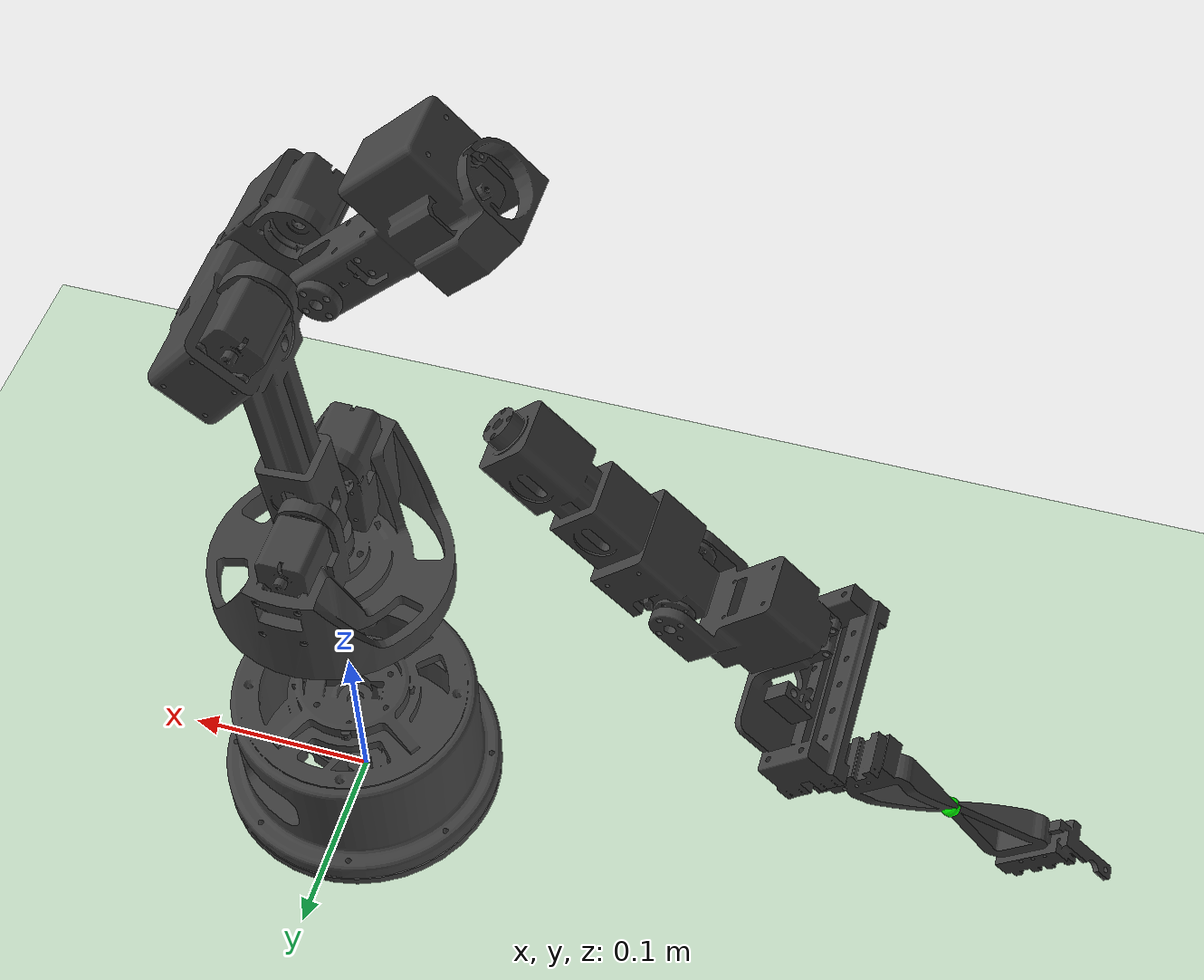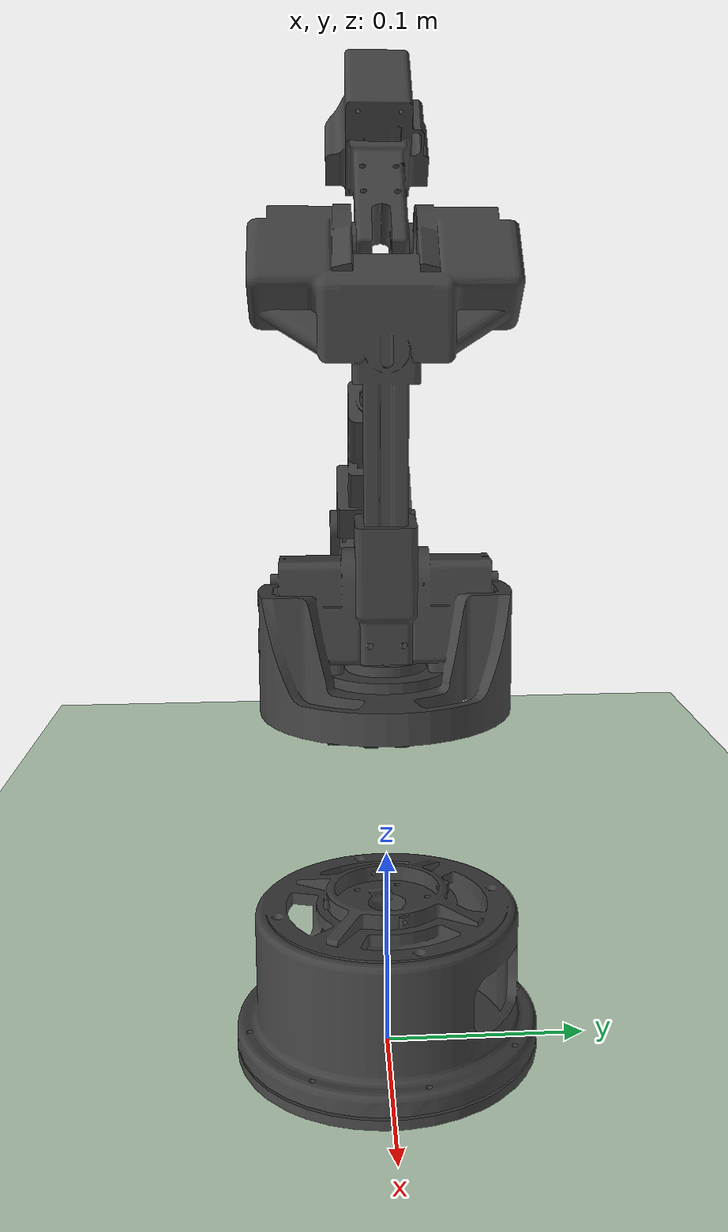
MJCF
<mujoco model="alicia_D_v5_4">
  <compiler angle="radian" meshdir="../meshes/"/>
  <default>
      <joint armature="0.001" damping="0.01" frictionloss="0.001" limited="true" margin="0.001" type="hinge"/>
      <geom material="black"/>
  </default>
  <asset>
    <mesh name="base_link" file="base_link.STL"/>
    <mesh name="Link1" file="Link1.STL"/>
    <mesh name="Link2" file="Link2.STL"/>
    <mesh name="Link3" file="Link3.STL"/>
    <mesh name="Link4" file="Link4.STL"/>
    <mesh name="Link5" file="Link5.STL"/>
    <mesh name="Link6" file="Link6.STL"/>
    <mesh name="Grasp_base" file="Grasp_base.STL"/>
    <mesh name="Link7" file="Link7.STL"/>
    <mesh name="Link8" file="Link8.STL"/>
    <texture builtin="gradient" height="100" rgb1=".4 .5 .6" rgb2="0 0 0" type="skybox" width="100"/>
    <texture builtin="checker" height="100" name="texplane" rgb1="1 1 1" rgb2=".8 .9 1" type="2d"
              width="100"/>
    <material name="MatPlane" reflectance="0.5" texrepeat="1 1" texture="texplane" texuniform="true"/>
    <material name="white" rgba="1 1 1 1" shininess="0.5" specular="0.1"/>
    <material name="black" rgba="0.25 0.25 0.25 1" shininess="0.2" specular="0.05"/>
    <material name="invisible" rgba="1 1 1 0" shininess="0" specular="0"/>
  </asset>

  <worldbody>
    <geom conaffinity="1" condim="3" contype="1" friction="1 .1 .1" group="2" material="MatPlane" name="floor"
          pos="0 0 0" rgba="0.8 0.9 0.8 1" size="500 500 0.125" type="plane"/>
    <light castshadow="false" cutoff="100" diffuse="1 1 1" dir="-0 0 -1.3" directional="true" exponent="1"
            pos="0 0 1.3" specular=".1 .1 .1"/>
    <body name="base_link" pos="0 0 0" quat="1 0 0 0">
      <geom type="mesh" contype="0" conaffinity="0" group="1" density="0"  mesh="base_link"/>
      <geom type="mesh"  mesh="base_link"/>
      <body name="Link1" pos="0 0 0.1445">
        <inertial pos="-6.25858e-05 7.92213e-05 -0.0125708" quat="0.495669 0.502153 -0.500685 0.501467" mass="0.203076" diaginertia="0.000304859 0.000235909 0.00013145"/>
        <joint name="Joint1" pos="0 0 0" axis="0 0 1" range="-2.16 2.16" actuatorfrcrange="-12 12"/>
        <geom type="mesh" contype="0" conaffinity="0" group="1" density="0"  mesh="Link1"/>
        <geom type="mesh"  mesh="Link1"/>
        <body name="Link2" pos="0 0 0.025106" quat="0.499998 0.5 -0.5 0.500002">
          <inertial pos="0.152521 0.0012105 -2.60951e-05" quat="0.559299 0.425653 0.430416 0.566345" mass="0.228751" diaginertia="0.000222417 0.000139383 0.000127226"/>
          <joint name="Joint2" pos="0 0 0" axis="0 0 -1" range="-1.57 1.57" actuatorfrcrange="-12 12"/>
          <geom type="mesh" contype="0" conaffinity="0" group="1" density="0"  mesh="Link2"/>
          <geom type="mesh"  mesh="Link2"/>
          <body name="Link3" pos="0.22367 0.022494 -5e-05" quat="0.382681 0 0 0.923881">
            <inertial pos="0.059121 -0.00292884 -0.00020687" quat="0.0100113 0.743852 -0.0277331 0.667694" mass="0.0902085" diaginertia="7.6497e-05 7.15699e-05 2.89138e-05"/>
            <joint name="Joint3" pos="0 0 0" axis="0 0 -1" range="-0.5 2.35619" actuatorfrcrange="-12 12"/>
            <geom type="mesh" contype="0" conaffinity="0" group="1" density="0"  mesh="Link3"/>
            <geom type="mesh"  mesh="Link3"/>
            <body name="Link4" pos="0.0988 0.00211 -0.0001" quat="0.499998 0.5 0.500002 0.5">
              <inertial pos="-0.000205267 0.000325243 0.0643236" quat="0.999753 -0.018319 -0.004056 -0.0119026" mass="0.0791975" diaginertia="2.47732e-05 2.46755e-05 1.52211e-05"/>
              <joint name="Joint4" pos="0 0 0" axis="0 0 -1" range="-3.14 3.14" actuatorfrcrange="-12 12"/>
              <geom type="mesh" contype="0" conaffinity="0" group="1" density="0"  mesh="Link4"/>
              <geom type="mesh"  mesh="Link4"/>
              <body name="Link5" pos="0 -0.0007 0.12011" quat="0.707105 -0.707108 0 0">
                <inertial pos="-0.0151916 -0.0355776 0.00100363" quat="0.477111 0.435591 0.530724 0.548596" mass="0.0472227" diaginertia="1.9048e-05 1.40597e-05 1.18222e-05"/>
                <joint name="Joint5" pos="0 0 0" axis="0 0 -1" range="-1.57 1.5" actuatorfrcrange="-12 12"/>
                <geom type="mesh" contype="0" conaffinity="0" group="1" density="0"  mesh="Link5"/>
                <geom type="mesh"  mesh="Link5"/>
                <body name="Link6" pos="-0.0038938 -0.0573 0.0008" quat="0.707105 0.707108 0 0">
                  <inertial pos="-0.0183097 0.00085798 0.0337757" quat="0.574888 0.563521 -0.415241 0.423701" mass="0.136803" diaginertia="8.05186e-05 7.30959e-05 3.11449e-05"/>
                  <joint name="Joint6" pos="0 0 0" axis="0 0 -1" range="-3.14 3.14" actuatorfrcrange="-12 12"/>
                  <geom type="mesh" contype="0" conaffinity="0" group="1" density="0" mesh="Link6"/>
                  <geom type="mesh"  mesh="Link6"/>
                  <geom type="mesh" contype="0" conaffinity="0" group="1" density="0"  mesh="Grasp_base"/>
                  <geom type="mesh"  mesh="Grasp_base"/>
                  <geom size="0.005" pos="0.00275 0.0008332 0.13779" contype="0" conaffinity="0" group="1" density="0" rgba="0 1 0 1"/>
                  <body name="Link7" pos="0.00275 -0.0011661 0.13779" quat="0.716133 0.697964 0 0">
                    <inertial pos="0.00110741 -0.0505406 0.00928375" quat="0.48495 0.518462 -0.407827 0.574194" mass="0.0243493" diaginertia="1.23445e-05 9.71575e-06 3.92783e-06"/>
                    <joint name="left_finger" pos="0 0 0" axis="0 0 -1" type="slide" range="-0.025 0" actuatorfrcrange="-5 5"/>
                    <geom type="mesh" contype="0" conaffinity="0" group="1" density="0"  mesh="Link7"/>
                    <geom type="mesh"  mesh="Link7"/>
                  </body>
                  <body name="Link8" pos="0.00275 0.0028325 0.13768" quat="0.697961 -0.716136 0 0">
                    <inertial pos="0.00109597 0.0498869 0.0118635" quat="0.505733 0.498237 -0.58443 0.392982" mass="0.0243228" diaginertia="1.23098e-05 9.68264e-06 3.925e-06"/>
                    <joint name="right_finger" pos="0 0 0" axis="0 0 1" type="slide" range="0 0.025" actuatorfrcrange="-5 5"/>
                    <geom type="mesh" contype="0" conaffinity="0" group="1" density="0"  mesh="Link8"/>
                    <geom type="mesh"  mesh="Link8"/>
                  </body>
                </body>
              </body>
            </body>
          </body>
        </body>
      </body>
    </body>
  </worldbody>
  <actuator>
    <motor joint="Joint1"  gear="100"/>
    <motor joint="Joint2"  gear="100"/>
    <motor joint="Joint3"  gear="100"/>
    <motor joint="Joint4" gear="100"/>
    <motor joint="Joint5"  gear="100"/>
    <motor joint="Joint6" gear="100"/>
    <position joint="left_finger"/>
    <position joint="right_finger"/>
  </actuator>
  <contact>
    <exclude body1="base_link" body2="Link1"/>
    <exclude body1="Link1" body2="Link2"/>
    <exclude body1="Link2" body2="Link3"/>
    <exclude body1="Link3" body2="Link4"/>
    <exclude body1="Link4" body2="Link5"/>
    <exclude body1="Link5" body2="Link6"/>
    <exclude body1="Link6" body2="Link7"/>
    <exclude body1="Link6" body2="Link8"/>
  </contact>
</mujoco>
